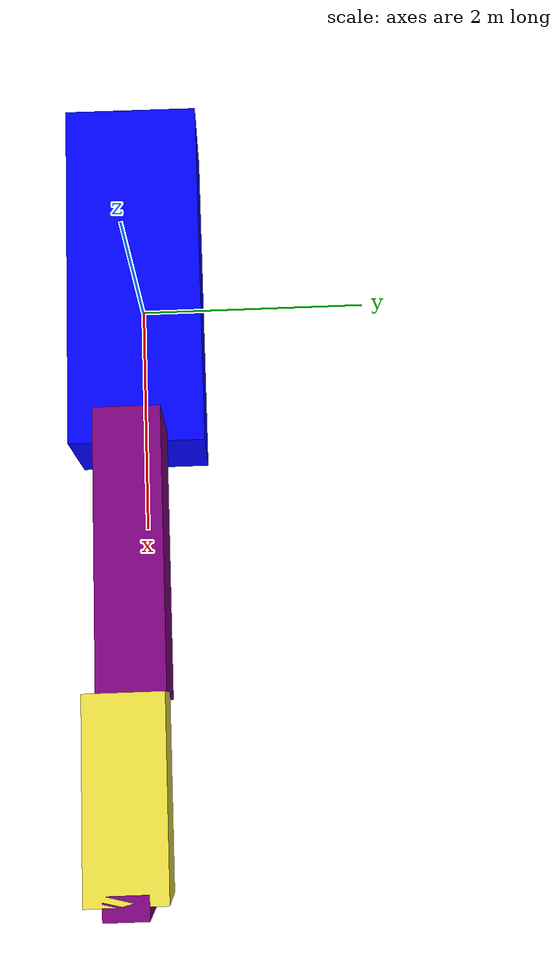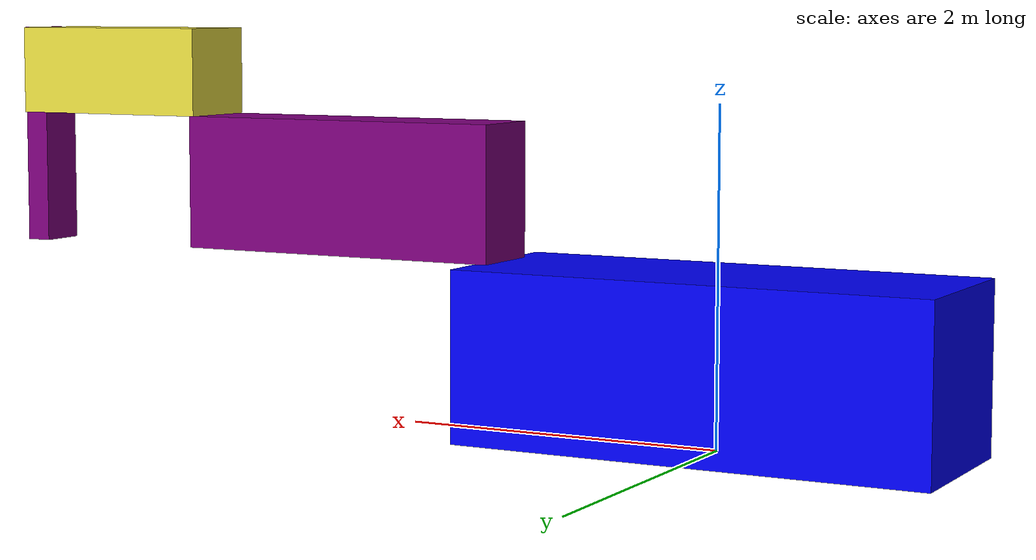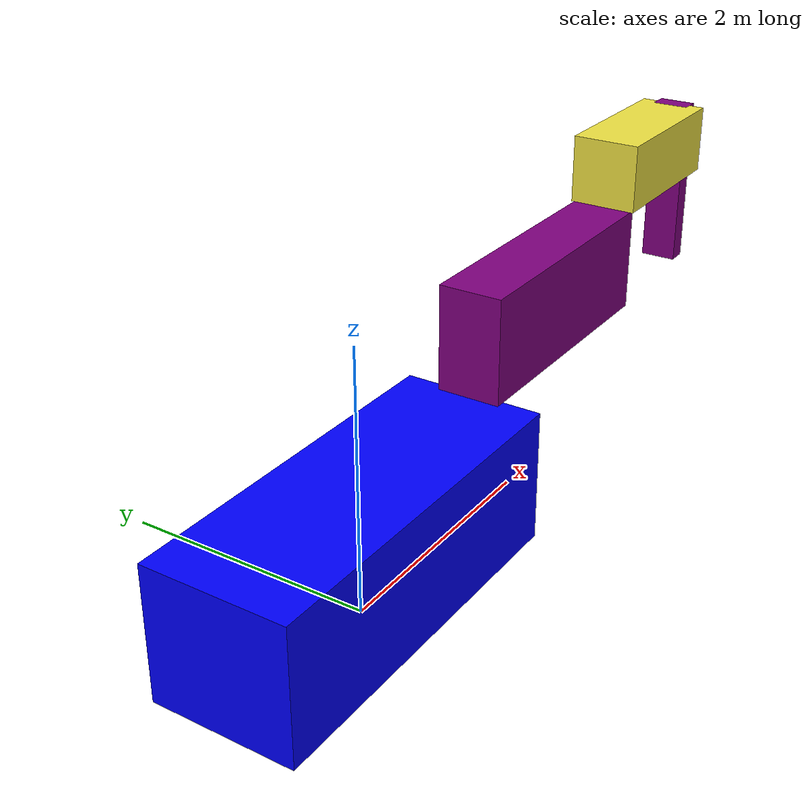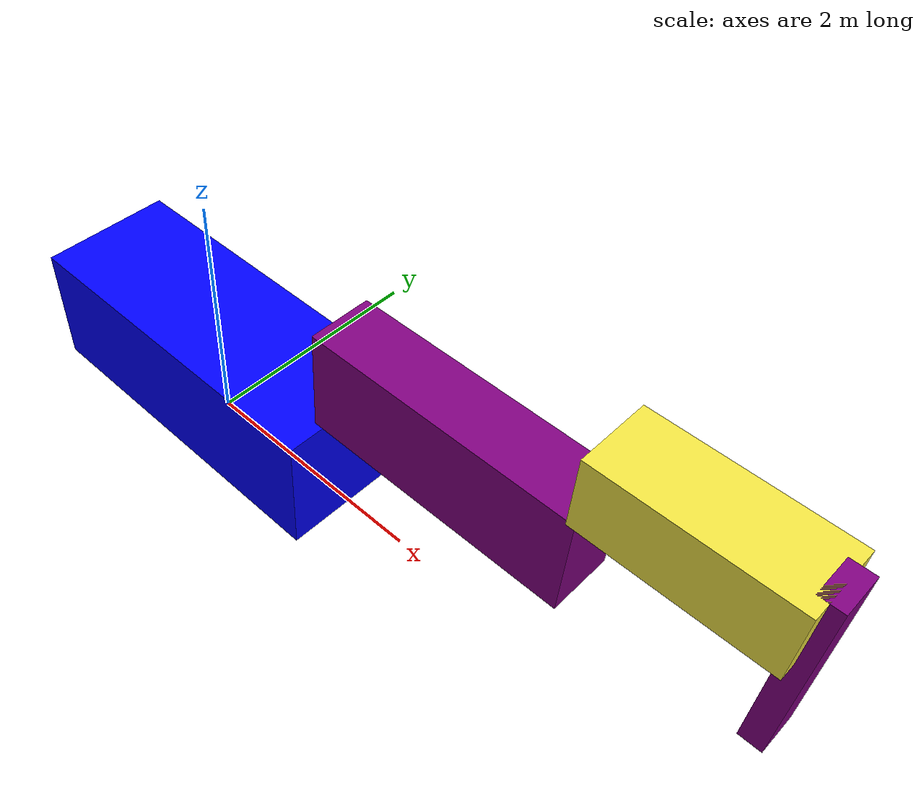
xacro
<?xml version='1.0'?>
<robot xmlns:xacro="http://www.ros.org/wiki/xacro" name="robot_manipulador">

    <!-- Scale Factor-->
    <xacro:property name="S" value="10" />

    <!-- Parámetros de la base -->
    <xacro:property name="baselx" value="${29/S}" />
    <xacro:property name="basely" value="${11/S}" />
    <xacro:property name="baselz" value="${10.3/S}" />

    <!-- Parámetros del brazo 1 -->
    <xacro:property name="bra1lx" value="${21.2/S}" />
    <xacro:property name="bra1ly" value="${5/S}" />
    <xacro:property name="bra1lz" value="${8.3/S}" />

    <!-- Offsets del brazo 1 -->
    <xacro:property name="olz1" value="${40/S}" />

    <!-- Parámetros del brazo 2 -->
    <xacro:property name="bra2lx" value="${13.3/S}" />
    <xacro:property name="bra2ly" value="${5.5/S}" />
    <xacro:property name="bra2lz" value="${5.5/S}" />

    <!-- Offsets del brazo 2 -->
    <xacro:property name="olz2" value="${23/S}" />

    <!-- distancia entre brazos -->
    <xacro:property name="dist_brazos" value="${100/S}" />
    <xacro:property name="yoffset" value="${25/S}" />

    <!-- Parámetros de la herramienta -->
    <xacro:property name="of_herramienta_lx" value="${1.6/S}" />
    <xacro:property name="of_herramienta_ly" value="${3.0/S}" />
    <xacro:property name="of_herramienta_lz" value="${14.0/S}" />

    <!-- Macro para un brazo -->
    <xacro:macro name="brazo_macro" params="p_name p_xlength p_ylength p_zlength">
        <link name="${p_name}">
            <visual>
                <geometry>
                    <box size="${p_xlength} ${p_ylength} ${p_zlength}"/>
                </geometry>
                <origin xyz="${(p_xlength/2)-0.023} 0 ${(p_zlength/2)}" rpy="0 0 0"/>
            </visual>

            <inertial>
                <mass value="1"/>
                <origin xyz="0 0 0" rpy="0 0 0"/>
                <inertia ixx="1" ixy="0" ixz="0" iyy="1" iyz="0" izz="1"/>
            </inertial>

            <collision>
                <geometry>
                    <box size="${p_xlength} ${p_ylength} ${p_zlength}"/>
                </geometry>
                <origin xyz="${(p_xlength/2)-0.023} 0 ${(p_zlength/2)}" rpy="0 0 0"/>
            </collision>
        </link>
    </xacro:macro>

    <!-- Base -->
    <link name="base_link" />
    <!-- Base -->

    <joint name="base_base_principal_joint" type="fixed">
        <parent link="base_link"/>
        <child link="base_principal_link"/>
        <origin xyz="0 0 ${baselz/2}" rpy="0 0 0"/>
    </joint>

    <link name="base_principal_link">
        <visual>
            <geometry>
                <box size="${baselx} ${basely} ${baselz}"/>
            </geometry>
            <origin xyz="0 0 0" rpy="0 0 0"/>
            <material name="custom_blue">
                <color rgba="0.0 0.0 1.0 1.0"/>
            </material>

        </visual>

        <inertial>
            <mass value="1"/>
            <origin xyz="0 0 0" rpy="0 0 0"/>
            <inertia ixx="1" ixy="0" ixz="0" iyy="1" iyz="0" izz="1"/>
        </inertial>

        <collision>
            <geometry>
                <box size="${baselx} ${basely} ${baselz}"/>
            </geometry>
            <origin xyz="0 0 ${baselz/2}" rpy="0 0 0"/>
        </collision>
    </link>

    <!-- Brazo 1 -->
    <joint name="baseprincipal_brazo1_joint" type="revolute">
        <parent link="base_principal_link"/>
        <child link="brazo1_link"/>
        <origin xyz="${(baselx/2)-0.04} 0 ${baselz/2}" rpy="0 0 0"/>
        <axis xyz="0 0 1"/>
        <limit effort="1" lower="-${pi/2}" upper="${pi/2}" velocity="1"/>
        <dynamics damping="1" friction="1"/>
    </joint>

    <link name="brazo1_link">
        <visual>
            <geometry>
                <box size="${bra1lx} ${bra1ly} ${bra1lz}"/>
            </geometry>
            <origin xyz="${(bra1lx/2)-0.034} 0 ${bra1lz/2}" rpy="0 0 0"/>
            <material name="purple">
                <color rgba="0.5 0 0.5 1"/> <!-- rojo=0.5, verde=0, azul=0.5, alfa=1 -->
            </material>
        </visual>

        <inertial>
            <mass value="1"/>
            <origin xyz="0 0 0" rpy="0 0 0"/>
            <inertia ixx="1" ixy="0" ixz="0" iyy="1" iyz="0" izz="1"/>
        </inertial>

        <collision>
            <geometry>
                <box size="${bra1lx} ${bra1ly} ${bra1lz}"/>
            </geometry>
            <origin xyz="0 0 ${bra1lz/2}" rpy="0 0 0"/>
        </collision>
    </link>

    <!-- Brazo 2 -->

    <joint name="brazo2_joint" type="revolute">
        <parent link="brazo1_link"/>
        <child link="brazo2_link"/>
        <origin xyz="${(bra1lx-0.023-0.034)} 0 ${bra1lz}" rpy="0 0 0"/>
        <axis xyz="0 0 1"/>
        <limit effort="1" lower="-${pi/2}" upper="${pi/2}" velocity="1"/>
        <dynamics damping="1" friction="1"/>

    </joint>

    <xacro:brazo_macro p_name="brazo2_link"
                       p_xlength="${bra2lx}"
                       p_ylength="${bra2ly}"
                       p_zlength="${bra2lz}" />

    <!-- Brazo p -->

    <joint name="prismatic_joint" type="prismatic">
        <parent link="brazo2_link"/>
        <child link="prismatic_link"/>
        <origin xyz="${(bra2lx-0.015)} 0 ${bra2lz}" rpy="0 0 0"/>
        <axis xyz="0 0 1"/>
        <limit effort="1" lower="-${pi/2}" upper="${pi/2}" velocity="1"/>
        <dynamics damping="1" friction="1"/>

    </joint>

    <link name="prismatic_link">
        <visual>
            <geometry>
                <box size="${of_herramienta_lx} ${of_herramienta_ly} ${of_herramienta_lz}"/>
            </geometry>
            <origin xyz="0 0 -${of_herramienta_lz/2}" rpy="0 0 0"/>
            <material name="purple">
                <color rgba="0.5 0 0.5 1"/> <!-- rojo=0.5, verde=0, azul=0.5, alfa=1 -->
            </material>

        </visual>

        <inertial>
            <mass value="1"/>
            <origin xyz="0 0 0" rpy="0 0 0"/>
            <inertia ixx="1" ixy="0" ixz="0" iyy="1" iyz="0" izz="1"/>
        </inertial>

        <collision>
            <geometry>
                <box size="${of_herramienta_lx} ${of_herramienta_ly} ${of_herramienta_lz}"/>
            </geometry>
            <origin xyz="0 0 -${of_herramienta_lz/2}" rpy="0 0 0"/>
        </collision>
    </link>

</robot>
